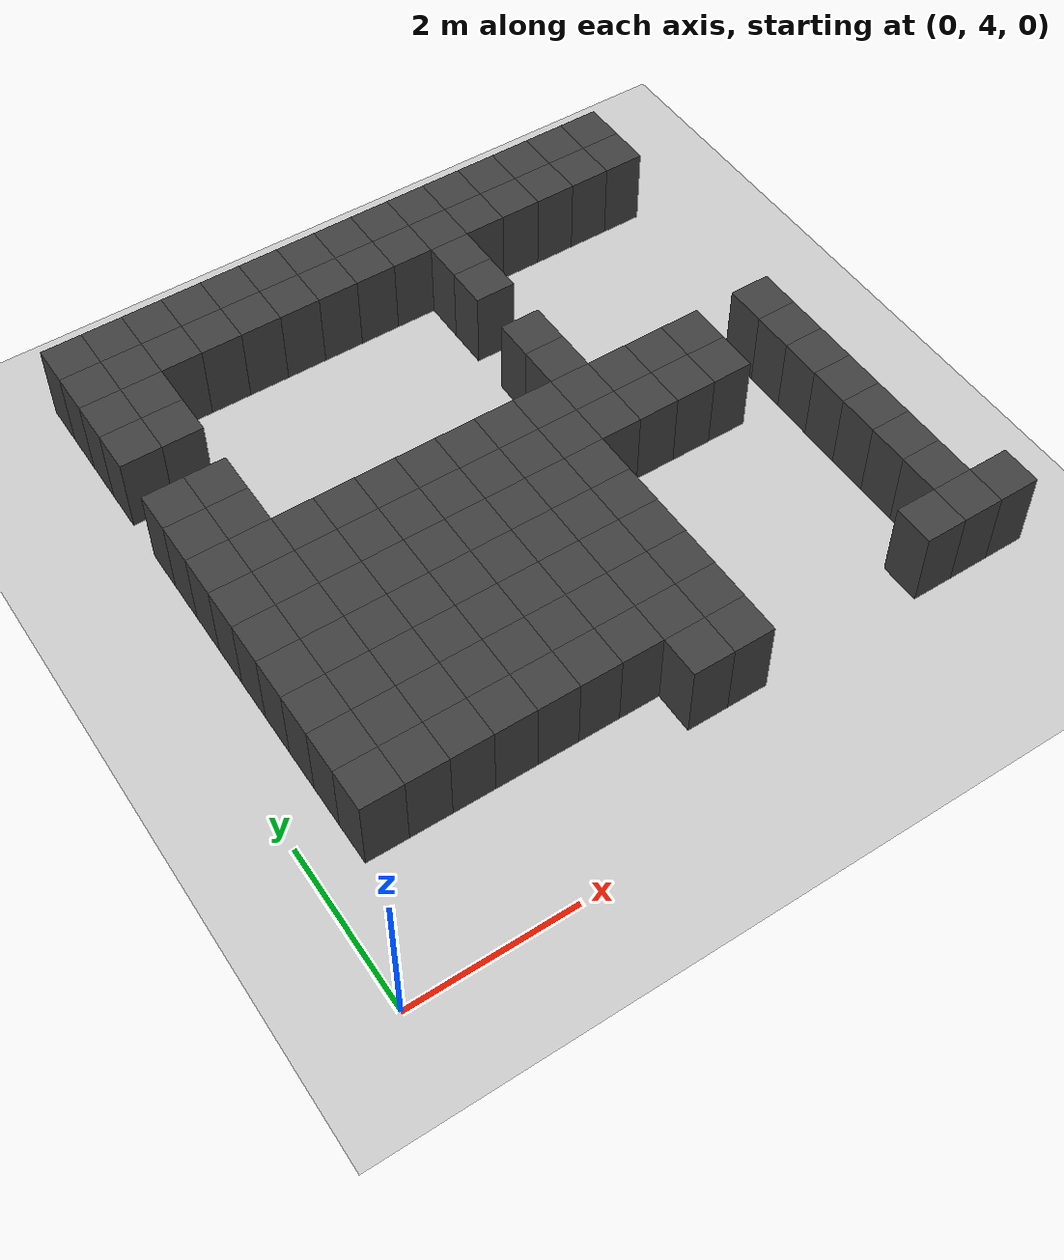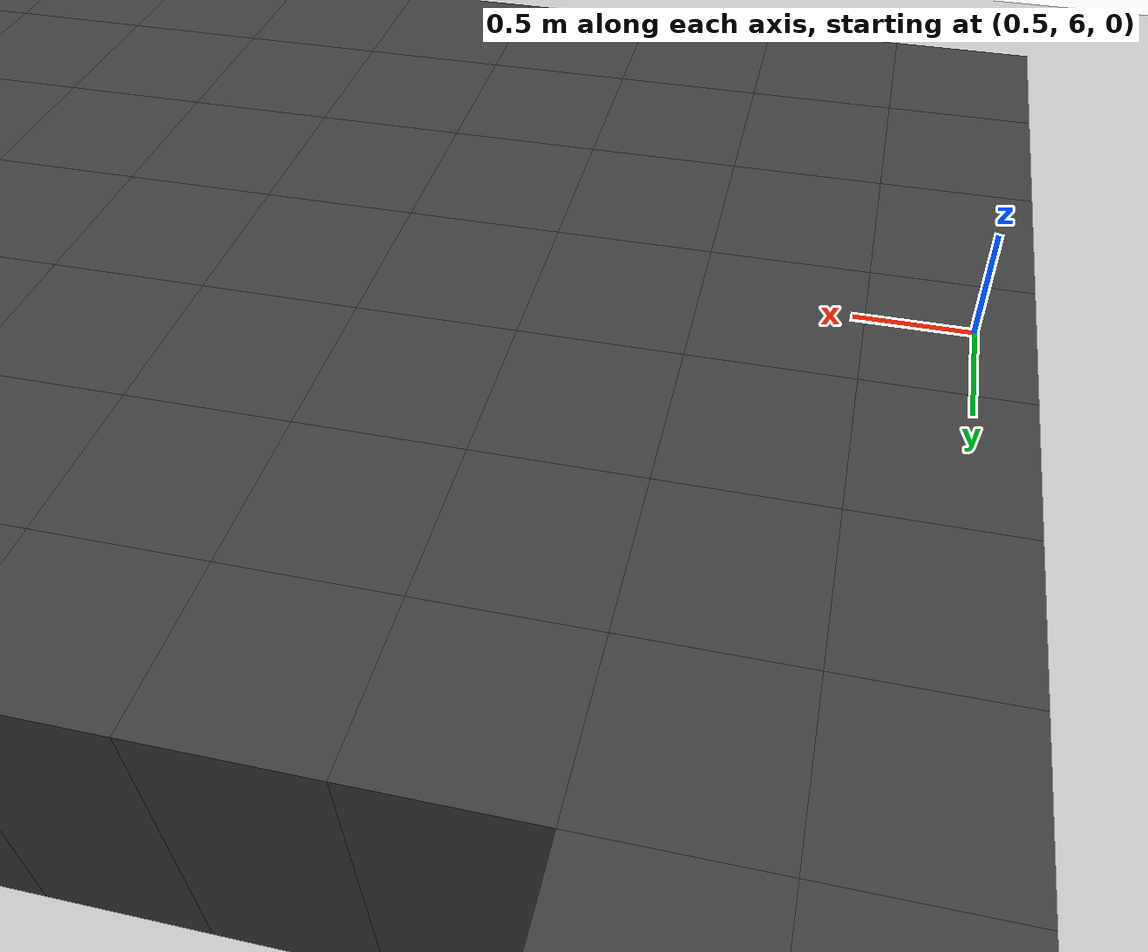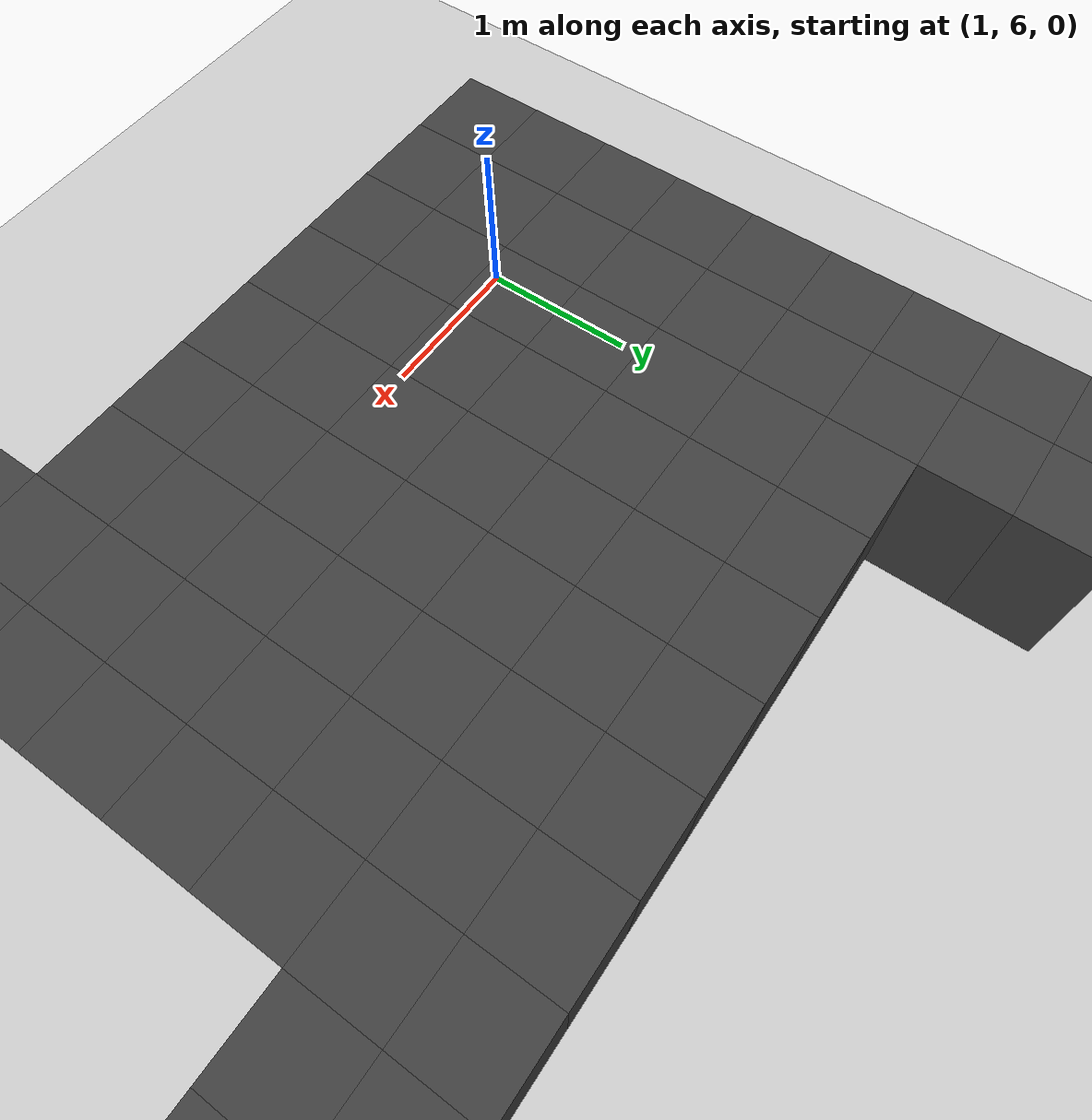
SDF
<sdf version="1.7">
 <world name="map_13820">
  <model name="ground_plane">
   <static>true</static>
   <link name="link">
    <collision name="collision">
     <geometry><plane><normal>0 0 1</normal><size>200 200</size></plane></geometry>
    </collision>
    <visual name="visual">
     <geometry><plane><normal>0 0 1</normal><size>200 200</size></plane></geometry>
     <material><ambient>0.8 0.8 0.8 1</ambient><diffuse>0.8 0.8 0.8 1</diffuse></material>
    </visual>
   </link>
  </model>
  <model name="maze_environment">
   <static>true</static>
   <link name="wall_26">
    <pose>0.750 12.250 0.500 0 0 0</pose>
    <collision name="col"><geometry><box><size>0.5 0.5 1.0</size></box></geometry></collision>
    <visual name="vis">
     <geometry><box><size>0.5 0.5 1.0</size></box></geometry>
     <material><ambient>0.15 0.15 0.15 1</ambient><diffuse>0.25 0.25 0.25 1</diffuse></material>
    </visual>
   </link>
   <link name="wall_27">
    <pose>1.250 12.250 0.500 0 0 0</pose>
    <collision name="col"><geometry><box><size>0.5 0.5 1.0</size></box></geometry></collision>
    <visual name="vis">
     <geometry><box><size>0.5 0.5 1.0</size></box></geometry>
     <material><ambient>0.15 0.15 0.15 1</ambient><diffuse>0.25 0.25 0.25 1</diffuse></material>
    </visual>
   </link>
   <link name="wall_28">
    <pose>1.750 12.250 0.500 0 0 0</pose>
    <collision name="col"><geometry><box><size>0.5 0.5 1.0</size></box></geometry></collision>
    <visual name="vis">
     <geometry><box><size>0.5 0.5 1.0</size></box></geometry>
     <material><ambient>0.15 0.15 0.15 1</ambient><diffuse>0.25 0.25 0.25 1</diffuse></material>
    </visual>
   </link>
   <link name="wall_29">
    <pose>2.250 12.250 0.500 0 0 0</pose>
    <collision name="col"><geometry><box><size>0.5 0.5 1.0</size></box></geometry></collision>
    <visual name="vis">
     <geometry><box><size>0.5 0.5 1.0</size></box></geometry>
     <material><ambient>0.15 0.15 0.15 1</ambient><diffuse>0.25 0.25 0.25 1</diffuse></material>
    </visual>
   </link>
   <link name="wall_30">
    <pose>2.750 12.250 0.500 0 0 0</pose>
    <collision name="col"><geometry><box><size>0.5 0.5 1.0</size></box></geometry></collision>
    <visual name="vis">
     <geometry><box><size>0.5 0.5 1.0</size></box></geometry>
     <material><ambient>0.15 0.15 0.15 1</ambient><diffuse>0.25 0.25 0.25 1</diffuse></material>
    </visual>
   </link>
   <link name="wall_31">
    <pose>3.250 12.250 0.500 0 0 0</pose>
    <collision name="col"><geometry><box><size>0.5 0.5 1.0</size></box></geometry></collision>
    <visual name="vis">
     <geometry><box><size>0.5 0.5 1.0</size></box></geometry>
     <material><ambient>0.15 0.15 0.15 1</ambient><diffuse>0.25 0.25 0.25 1</diffuse></material>
    </visual>
   </link>
   <link name="wall_32">
    <pose>3.750 12.250 0.500 0 0 0</pose>
    <collision name="col"><geometry><box><size>0.5 0.5 1.0</size></box></geometry></collision>
    <visual name="vis">
     <geometry><box><size>0.5 0.5 1.0</size></box></geometry>
     <material><ambient>0.15 0.15 0.15 1</ambient><diffuse>0.25 0.25 0.25 1</diffuse></material>
    </visual>
   </link>
   <link name="wall_33">
    <pose>4.250 12.250 0.500 0 0 0</pose>
    <collision name="col"><geometry><box><size>0.5 0.5 1.0</size></box></geometry></collision>
    <visual name="vis">
     <geometry><box><size>0.5 0.5 1.0</size></box></geometry>
     <material><ambient>0.15 0.15 0.15 1</ambient><diffuse>0.25 0.25 0.25 1</diffuse></material>
    </visual>
   </link>
   <link name="wall_34">
    <pose>4.750 12.250 0.500 0 0 0</pose>
    <collision name="col"><geometry><box><size>0.5 0.5 1.0</size></box></geometry></collision>
    <visual name="vis">
     <geometry><box><size>0.5 0.5 1.0</size></box></geometry>
     <material><ambient>0.15 0.15 0.15 1</ambient><diffuse>0.25 0.25 0.25 1</diffuse></material>
    </visual>
   </link>
   <link name="wall_35">
    <pose>5.250 12.250 0.500 0 0 0</pose>
    <collision name="col"><geometry><box><size>0.5 0.5 1.0</size></box></geometry></collision>
    <visual name="vis">
     <geometry><box><size>0.5 0.5 1.0</size></box></geometry>
     <material><ambient>0.15 0.15 0.15 1</ambient><diffuse>0.25 0.25 0.25 1</diffuse></material>
    </visual>
   </link>
   <link name="wall_36">
    <pose>5.750 12.250 0.500 0 0 0</pose>
    <collision name="col"><geometry><box><size>0.5 0.5 1.0</size></box></geometry></collision>
    <visual name="vis">
     <geometry><box><size>0.5 0.5 1.0</size></box></geometry>
     <material><ambient>0.15 0.15 0.15 1</ambient><diffuse>0.25 0.25 0.25 1</diffuse></material>
    </visual>
   </link>
   <link name="wall_37">
    <pose>6.250 12.250 0.500 0 0 0</pose>
    <collision name="col"><geometry><box><size>0.5 0.5 1.0</size></box></geometry></collision>
    <visual name="vis">
     <geometry><box><size>0.5 0.5 1.0</size></box></geometry>
     <material><ambient>0.15 0.15 0.15 1</ambient><diffuse>0.25 0.25 0.25 1</diffuse></material>
    </visual>
   </link>
   <link name="wall_38">
    <pose>6.750 12.250 0.500 0 0 0</pose>
    <collision name="col"><geometry><box><size>0.5 0.5 1.0</size></box></geometry></collision>
    <visual name="vis">
     <geometry><box><size>0.5 0.5 1.0</size></box></geometry>
     <material><ambient>0.15 0.15 0.15 1</ambient><diffuse>0.25 0.25 0.25 1</diffuse></material>
    </visual>
   </link>
   <link name="wall_39">
    <pose>7.250 12.250 0.500 0 0 0</pose>
    <collision name="col"><geometry><box><size>0.5 0.5 1.0</size></box></geometry></collision>
    <visual name="vis">
     <geometry><box><size>0.5 0.5 1.0</size></box></geometry>
     <material><ambient>0.15 0.15 0.15 1</ambient><diffuse>0.25 0.25 0.25 1</diffuse></material>
    </visual>
   </link>
   <link name="wall_40">
    <pose>7.750 12.250 0.500 0 0 0</pose>
    <collision name="col"><geometry><box><size>0.5 0.5 1.0</size></box></geometry></collision>
    <visual name="vis">
     <geometry><box><size>0.5 0.5 1.0</size></box></geometry>
     <material><ambient>0.15 0.15 0.15 1</ambient><diffuse>0.25 0.25 0.25 1</diffuse></material>
    </visual>
   </link>
   <link name="wall_73">
    <pose>0.750 11.750 0.500 0 0 0</pose>
    <collision name="col"><geometry><box><size>0.5 0.5 1.0</size></box></geometry></collision>
    <visual name="vis">
     <geometry><box><size>0.5 0.5 1.0</size></box></geometry>
     <material><ambient>0.15 0.15 0.15 1</ambient><diffuse>0.25 0.25 0.25 1</diffuse></material>
    </visual>
   </link>
   <link name="wall_74">
    <pose>1.250 11.750 0.500 0 0 0</pose>
    <collision name="col"><geometry><box><size>0.5 0.5 1.0</size></box></geometry></collision>
    <visual name="vis">
     <geometry><box><size>0.5 0.5 1.0</size></box></geometry>
     <material><ambient>0.15 0.15 0.15 1</ambient><diffuse>0.25 0.25 0.25 1</diffuse></material>
    </visual>
   </link>
   <link name="wall_75">
    <pose>1.750 11.750 0.500 0 0 0</pose>
    <collision name="col"><geometry><box><size>0.5 0.5 1.0</size></box></geometry></collision>
    <visual name="vis">
     <geometry><box><size>0.5 0.5 1.0</size></box></geometry>
     <material><ambient>0.15 0.15 0.15 1</ambient><diffuse>0.25 0.25 0.25 1</diffuse></material>
    </visual>
   </link>
   <link name="wall_76">
    <pose>2.250 11.750 0.500 0 0 0</pose>
    <collision name="col"><geometry><box><size>0.5 0.5 1.0</size></box></geometry></collision>
    <visual name="vis">
     <geometry><box><size>0.5 0.5 1.0</size></box></geometry>
     <material><ambient>0.15 0.15 0.15 1</ambient><diffuse>0.25 0.25 0.25 1</diffuse></material>
    </visual>
   </link>
   <link name="wall_77">
    <pose>2.750 11.750 0.500 0 0 0</pose>
    <collision name="col"><geometry><box><size>0.5 0.5 1.0</size></box></geometry></collision>
    <visual name="vis">
     <geometry><box><size>0.5 0.5 1.0</size></box></geometry>
     <material><ambient>0.15 0.15 0.15 1</ambient><diffuse>0.25 0.25 0.25 1</diffuse></material>
    </visual>
   </link>
   <link name="wall_78">
    <pose>3.250 11.750 0.500 0 0 0</pose>
    <collision name="col"><geometry><box><size>0.5 0.5 1.0</size></box></geometry></collision>
    <visual name="vis">
     <geometry><box><size>0.5 0.5 1.0</size></box></geometry>
     <material><ambient>0.15 0.15 0.15 1</ambient><diffuse>0.25 0.25 0.25 1</diffuse></material>
    </visual>
   </link>
   <link name="wall_79">
    <pose>3.750 11.750 0.500 0 0 0</pose>
    <collision name="col"><geometry><box><size>0.5 0.5 1.0</size></box></geometry></collision>
    <visual name="vis">
     <geometry><box><size>0.5 0.5 1.0</size></box></geometry>
     <material><ambient>0.15 0.15 0.15 1</ambient><diffuse>0.25 0.25 0.25 1</diffuse></material>
    </visual>
   </link>
   <link name="wall_80">
    <pose>4.250 11.750 0.500 0 0 0</pose>
    <collision name="col"><geometry><box><size>0.5 0.5 1.0</size></box></geometry></collision>
    <visual name="vis">
     <geometry><box><size>0.5 0.5 1.0</size></box></geometry>
     <material><ambient>0.15 0.15 0.15 1</ambient><diffuse>0.25 0.25 0.25 1</diffuse></material>
    </visual>
   </link>
   <link name="wall_81">
    <pose>4.750 11.750 0.500 0 0 0</pose>
    <collision name="col"><geometry><box><size>0.5 0.5 1.0</size></box></geometry></collision>
    <visual name="vis">
     <geometry><box><size>0.5 0.5 1.0</size></box></geometry>
     <material><ambient>0.15 0.15 0.15 1</ambient><diffuse>0.25 0.25 0.25 1</diffuse></material>
    </visual>
   </link>
   <link name="wall_82">
    <pose>5.250 11.750 0.500 0 0 0</pose>
    <collision name="col"><geometry><box><size>0.5 0.5 1.0</size></box></geometry></collision>
    <visual name="vis">
     <geometry><box><size>0.5 0.5 1.0</size></box></geometry>
     <material><ambient>0.15 0.15 0.15 1</ambient><diffuse>0.25 0.25 0.25 1</diffuse></material>
    </visual>
   </link>
   <link name="wall_83">
    <pose>5.750 11.750 0.500 0 0 0</pose>
    <collision name="col"><geometry><box><size>0.5 0.5 1.0</size></box></geometry></collision>
    <visual name="vis">
     <geometry><box><size>0.5 0.5 1.0</size></box></geometry>
     <material><ambient>0.15 0.15 0.15 1</ambient><diffuse>0.25 0.25 0.25 1</diffuse></material>
    </visual>
   </link>
   <link name="wall_84">
    <pose>6.250 11.750 0.500 0 0 0</pose>
    <collision name="col"><geometry><box><size>0.5 0.5 1.0</size></box></geometry></collision>
    <visual name="vis">
     <geometry><box><size>0.5 0.5 1.0</size></box></geometry>
     <material><ambient>0.15 0.15 0.15 1</ambient><diffuse>0.25 0.25 0.25 1</diffuse></material>
    </visual>
   </link>
   <link name="wall_85">
    <pose>6.750 11.750 0.500 0 0 0</pose>
    <collision name="col"><geometry><box><size>0.5 0.5 1.0</size></box></geometry></collision>
    <visual name="vis">
     <geometry><box><size>0.5 0.5 1.0</size></box></geometry>
     <material><ambient>0.15 0.15 0.15 1</ambient><diffuse>0.25 0.25 0.25 1</diffuse></material>
    </visual>
   </link>
   <link name="wall_86">
    <pose>7.250 11.750 0.500 0 0 0</pose>
    <collision name="col"><geometry><box><size>0.5 0.5 1.0</size></box></geometry></collision>
    <visual name="vis">
     <geometry><box><size>0.5 0.5 1.0</size></box></geometry>
     <material><ambient>0.15 0.15 0.15 1</ambient><diffuse>0.25 0.25 0.25 1</diffuse></material>
    </visual>
   </link>
   <link name="wall_87">
    <pose>7.750 11.750 0.500 0 0 0</pose>
    <collision name="col"><geometry><box><size>0.5 0.5 1.0</size></box></geometry></collision>
    <visual name="vis">
     <geometry><box><size>0.5 0.5 1.0</size></box></geometry>
     <material><ambient>0.15 0.15 0.15 1</ambient><diffuse>0.25 0.25 0.25 1</diffuse></material>
    </visual>
   </link>
   <link name="wall_114">
    <pose>0.750 11.250 0.500 0 0 0</pose>
    <collision name="col"><geometry><box><size>0.5 0.5 1.0</size></box></geometry></collision>
    <visual name="vis">
     <geometry><box><size>0.5 0.5 1.0</size></box></geometry>
     <material><ambient>0.15 0.15 0.15 1</ambient><diffuse>0.25 0.25 0.25 1</diffuse></material>
    </visual>
   </link>
   <link name="wall_115">
    <pose>1.250 11.250 0.500 0 0 0</pose>
    <collision name="col"><geometry><box><size>0.5 0.5 1.0</size></box></geometry></collision>
    <visual name="vis">
     <geometry><box><size>0.5 0.5 1.0</size></box></geometry>
     <material><ambient>0.15 0.15 0.15 1</ambient><diffuse>0.25 0.25 0.25 1</diffuse></material>
    </visual>
   </link>
   <link name="wall_116">
    <pose>5.250 11.250 0.500 0 0 0</pose>
    <collision name="col"><geometry><box><size>0.5 0.5 1.0</size></box></geometry></collision>
    <visual name="vis">
     <geometry><box><size>0.5 0.5 1.0</size></box></geometry>
     <material><ambient>0.15 0.15 0.15 1</ambient><diffuse>0.25 0.25 0.25 1</diffuse></material>
    </visual>
   </link>
   <link name="wall_141">
    <pose>0.750 10.750 0.500 0 0 0</pose>
    <collision name="col"><geometry><box><size>0.5 0.5 1.0</size></box></geometry></collision>
    <visual name="vis">
     <geometry><box><size>0.5 0.5 1.0</size></box></geometry>
     <material><ambient>0.15 0.15 0.15 1</ambient><diffuse>0.25 0.25 0.25 1</diffuse></material>
    </visual>
   </link>
   <link name="wall_142">
    <pose>1.250 10.750 0.500 0 0 0</pose>
    <collision name="col"><geometry><box><size>0.5 0.5 1.0</size></box></geometry></collision>
    <visual name="vis">
     <geometry><box><size>0.5 0.5 1.0</size></box></geometry>
     <material><ambient>0.15 0.15 0.15 1</ambient><diffuse>0.25 0.25 0.25 1</diffuse></material>
    </visual>
   </link>
   <link name="wall_143">
    <pose>5.250 10.750 0.500 0 0 0</pose>
    <collision name="col"><geometry><box><size>0.5 0.5 1.0</size></box></geometry></collision>
    <visual name="vis">
     <geometry><box><size>0.5 0.5 1.0</size></box></geometry>
     <material><ambient>0.15 0.15 0.15 1</ambient><diffuse>0.25 0.25 0.25 1</diffuse></material>
    </visual>
   </link>
   <link name="wall_182">
    <pose>0.750 9.750 0.500 0 0 0</pose>
    <collision name="col"><geometry><box><size>0.5 0.5 1.0</size></box></geometry></collision>
    <visual name="vis">
     <geometry><box><size>0.5 0.5 1.0</size></box></geometry>
     <material><ambient>0.15 0.15 0.15 1</ambient><diffuse>0.25 0.25 0.25 1</diffuse></material>
    </visual>
   </link>
   <link name="wall_183">
    <pose>1.250 9.750 0.500 0 0 0</pose>
    <collision name="col"><geometry><box><size>0.5 0.5 1.0</size></box></geometry></collision>
    <visual name="vis">
     <geometry><box><size>0.5 0.5 1.0</size></box></geometry>
     <material><ambient>0.15 0.15 0.15 1</ambient><diffuse>0.25 0.25 0.25 1</diffuse></material>
    </visual>
   </link>
   <link name="wall_184">
    <pose>5.250 9.750 0.500 0 0 0</pose>
    <collision name="col"><geometry><box><size>0.5 0.5 1.0</size></box></geometry></collision>
    <visual name="vis">
     <geometry><box><size>0.5 0.5 1.0</size></box></geometry>
     <material><ambient>0.15 0.15 0.15 1</ambient><diffuse>0.25 0.25 0.25 1</diffuse></material>
    </visual>
   </link>
   <link name="wall_205">
    <pose>0.750 9.250 0.500 0 0 0</pose>
    <collision name="col"><geometry><box><size>0.5 0.5 1.0</size></box></geometry></collision>
    <visual name="vis">
     <geometry><box><size>0.5 0.5 1.0</size></box></geometry>
     <material><ambient>0.15 0.15 0.15 1</ambient><diffuse>0.25 0.25 0.25 1</diffuse></material>
    </visual>
   </link>
   <link name="wall_206">
    <pose>1.250 9.250 0.500 0 0 0</pose>
    <collision name="col"><geometry><box><size>0.5 0.5 1.0</size></box></geometry></collision>
    <visual name="vis">
     <geometry><box><size>0.5 0.5 1.0</size></box></geometry>
     <material><ambient>0.15 0.15 0.15 1</ambient><diffuse>0.25 0.25 0.25 1</diffuse></material>
    </visual>
   </link>
   <link name="wall_207">
    <pose>5.250 9.250 0.500 0 0 0</pose>
    <collision name="col"><geometry><box><size>0.5 0.5 1.0</size></box></geometry></collision>
    <visual name="vis">
     <geometry><box><size>0.5 0.5 1.0</size></box></geometry>
     <material><ambient>0.15 0.15 0.15 1</ambient><diffuse>0.25 0.25 0.25 1</diffuse></material>
    </visual>
   </link>
   <link name="wall_221">
    <pose>0.750 8.750 0.500 0 0 0</pose>
    <collision name="col"><geometry><box><size>0.5 0.5 1.0</size></box></geometry></collision>
    <visual name="vis">
     <geometry><box><size>0.5 0.5 1.0</size></box></geometry>
     <material><ambient>0.15 0.15 0.15 1</ambient><diffuse>0.25 0.25 0.25 1</diffuse></material>
    </visual>
   </link>
   <link name="wall_222">
    <pose>1.250 8.750 0.500 0 0 0</pose>
    <collision name="col"><geometry><box><size>0.5 0.5 1.0</size></box></geometry></collision>
    <visual name="vis">
     <geometry><box><size>0.5 0.5 1.0</size></box></geometry>
     <material><ambient>0.15 0.15 0.15 1</ambient><diffuse>0.25 0.25 0.25 1</diffuse></material>
    </visual>
   </link>
   <link name="wall_223">
    <pose>1.750 8.750 0.500 0 0 0</pose>
    <collision name="col"><geometry><box><size>0.5 0.5 1.0</size></box></geometry></collision>
    <visual name="vis">
     <geometry><box><size>0.5 0.5 1.0</size></box></geometry>
     <material><ambient>0.15 0.15 0.15 1</ambient><diffuse>0.25 0.25 0.25 1</diffuse></material>
    </visual>
   </link>
   <link name="wall_224">
    <pose>2.250 8.750 0.500 0 0 0</pose>
    <collision name="col"><geometry><box><size>0.5 0.5 1.0</size></box></geometry></collision>
    <visual name="vis">
     <geometry><box><size>0.5 0.5 1.0</size></box></geometry>
     <material><ambient>0.15 0.15 0.15 1</ambient><diffuse>0.25 0.25 0.25 1</diffuse></material>
    </visual>
   </link>
   <link name="wall_225">
    <pose>2.750 8.750 0.500 0 0 0</pose>
    <collision name="col"><geometry><box><size>0.5 0.5 1.0</size></box></geometry></collision>
    <visual name="vis">
     <geometry><box><size>0.5 0.5 1.0</size></box></geometry>
     <material><ambient>0.15 0.15 0.15 1</ambient><diffuse>0.25 0.25 0.25 1</diffuse></material>
    </visual>
   </link>
   <link name="wall_226">
    <pose>3.250 8.750 0.500 0 0 0</pose>
    <collision name="col"><geometry><box><size>0.5 0.5 1.0</size></box></geometry></collision>
    <visual name="vis">
     <geometry><box><size>0.5 0.5 1.0</size></box></geometry>
     <material><ambient>0.15 0.15 0.15 1</ambient><diffuse>0.25 0.25 0.25 1</diffuse></material>
    </visual>
   </link>
   <link name="wall_227">
    <pose>3.750 8.750 0.500 0 0 0</pose>
    <collision name="col"><geometry><box><size>0.5 0.5 1.0</size></box></geometry></collision>
    <visual name="vis">
     <geometry><box><size>0.5 0.5 1.0</size></box></geometry>
     <material><ambient>0.15 0.15 0.15 1</ambient><diffuse>0.25 0.25 0.25 1</diffuse></material>
    </visual>
   </link>
   <link name="wall_228">
    <pose>4.250 8.750 0.500 0 0 0</pose>
    <collision name="col"><geometry><box><size>0.5 0.5 1.0</size></box></geometry></collision>
    <visual name="vis">
     <geometry><box><size>0.5 0.5 1.0</size></box></geometry>
     <material><ambient>0.15 0.15 0.15 1</ambient><diffuse>0.25 0.25 0.25 1</diffuse></material>
    </visual>
   </link>
   <link name="wall_229">
    <pose>4.750 8.750 0.500 0 0 0</pose>
    <collision name="col"><geometry><box><size>0.5 0.5 1.0</size></box></geometry></collision>
    <visual name="vis">
     <geometry><box><size>0.5 0.5 1.0</size></box></geometry>
     <material><ambient>0.15 0.15 0.15 1</ambient><diffuse>0.25 0.25 0.25 1</diffuse></material>
    </visual>
   </link>
   <link name="wall_230">
    <pose>5.250 8.750 0.500 0 0 0</pose>
    <collision name="col"><geometry><box><size>0.5 0.5 1.0</size></box></geometry></collision>
    <visual name="vis">
     <geometry><box><size>0.5 0.5 1.0</size></box></geometry>
     <material><ambient>0.15 0.15 0.15 1</ambient><diffuse>0.25 0.25 0.25 1</diffuse></material>
    </visual>
   </link>
   <link name="wall_231">
    <pose>5.750 8.750 0.500 0 0 0</pose>
    <collision name="col"><geometry><box><size>0.5 0.5 1.0</size></box></geometry></collision>
    <visual name="vis">
     <geometry><box><size>0.5 0.5 1.0</size></box></geometry>
     <material><ambient>0.15 0.15 0.15 1</ambient><diffuse>0.25 0.25 0.25 1</diffuse></material>
    </visual>
   </link>
   <link name="wall_232">
    <pose>6.250 8.750 0.500 0 0 0</pose>
    <collision name="col"><geometry><box><size>0.5 0.5 1.0</size></box></geometry></collision>
    <visual name="vis">
     <geometry><box><size>0.5 0.5 1.0</size></box></geometry>
     <material><ambient>0.15 0.15 0.15 1</ambient><diffuse>0.25 0.25 0.25 1</diffuse></material>
    </visual>
   </link>
   <link name="wall_233">
    <pose>6.750 8.750 0.500 0 0 0</pose>
    <collision name="col"><geometry><box><size>0.5 0.5 1.0</size></box></geometry></collision>
    <visual name="vis">
     <geometry><box><size>0.5 0.5 1.0</size></box></geometry>
     <material><ambient>0.15 0.15 0.15 1</ambient><diffuse>0.25 0.25 0.25 1</diffuse></material>
    </visual>
   </link>
   <link name="wall_234">
    <pose>7.750 8.750 0.500 0 0 0</pose>
    <collision name="col"><geometry><box><size>0.5 0.5 1.0</size></box></geometry></collision>
    <visual name="vis">
     <geometry><box><size>0.5 0.5 1.0</size></box></geometry>
     <material><ambient>0.15 0.15 0.15 1</ambient><diffuse>0.25 0.25 0.25 1</diffuse></material>
    </visual>
   </link>
   <link name="wall_257">
    <pose>0.750 8.250 0.500 0 0 0</pose>
    <collision name="col"><geometry><box><size>0.5 0.5 1.0</size></box></geometry></collision>
    <visual name="vis">
     <geometry><box><size>0.5 0.5 1.0</size></box></geometry>
     <material><ambient>0.15 0.15 0.15 1</ambient><diffuse>0.25 0.25 0.25 1</diffuse></material>
    </visual>
   </link>
   <link name="wall_258">
    <pose>1.250 8.250 0.500 0 0 0</pose>
    <collision name="col"><geometry><box><size>0.5 0.5 1.0</size></box></geometry></collision>
    <visual name="vis">
     <geometry><box><size>0.5 0.5 1.0</size></box></geometry>
     <material><ambient>0.15 0.15 0.15 1</ambient><diffuse>0.25 0.25 0.25 1</diffuse></material>
    </visual>
   </link>
   <link name="wall_259">
    <pose>1.750 8.250 0.500 0 0 0</pose>
    <collision name="col"><geometry><box><size>0.5 0.5 1.0</size></box></geometry></collision>
    <visual name="vis">
     <geometry><box><size>0.5 0.5 1.0</size></box></geometry>
     <material><ambient>0.15 0.15 0.15 1</ambient><diffuse>0.25 0.25 0.25 1</diffuse></material>
    </visual>
   </link>
   <link name="wall_260">
    <pose>2.250 8.250 0.500 0 0 0</pose>
    <collision name="col"><geometry><box><size>0.5 0.5 1.0</size></box></geometry></collision>
    <visual name="vis">
     <geometry><box><size>0.5 0.5 1.0</size></box></geometry>
     <material><ambient>0.15 0.15 0.15 1</ambient><diffuse>0.25 0.25 0.25 1</diffuse></material>
    </visual>
   </link>
   <link name="wall_261">
    <pose>2.750 8.250 0.500 0 0 0</pose>
    <collision name="col"><geometry><box><size>0.5 0.5 1.0</size></box></geometry></collision>
    <visual name="vis">
     <geometry><box><size>0.5 0.5 1.0</size></box></geometry>
     <material><ambient>0.15 0.15 0.15 1</ambient><diffuse>0.25 0.25 0.25 1</diffuse></material>
    </visual>
   </link>
   <link name="wall_262">
    <pose>3.250 8.250 0.500 0 0 0</pose>
    <collision name="col"><geometry><box><size>0.5 0.5 1.0</size></box></geometry></collision>
    <visual name="vis">
     <geometry><box><size>0.5 0.5 1.0</size></box></geometry>
     <material><ambient>0.15 0.15 0.15 1</ambient><diffuse>0.25 0.25 0.25 1</diffuse></material>
    </visual>
   </link>
   <link name="wall_263">
    <pose>3.750 8.250 0.500 0 0 0</pose>
    <collision name="col"><geometry><box><size>0.5 0.5 1.0</size></box></geometry></collision>
    <visual name="vis">
     <geometry><box><size>0.5 0.5 1.0</size></box></geometry>
     <material><ambient>0.15 0.15 0.15 1</ambient><diffuse>0.25 0.25 0.25 1</diffuse></material>
    </visual>
   </link>
   <link name="wall_264">
    <pose>4.250 8.250 0.500 0 0 0</pose>
    <collision name="col"><geometry><box><size>0.5 0.5 1.0</size></box></geometry></collision>
    <visual name="vis">
     <geometry><box><size>0.5 0.5 1.0</size></box></geometry>
     <material><ambient>0.15 0.15 0.15 1</ambient><diffuse>0.25 0.25 0.25 1</diffuse></material>
    </visual>
   </link>
   <link name="wall_265">
    <pose>4.750 8.250 0.500 0 0 0</pose>
    <collision name="col"><geometry><box><size>0.5 0.5 1.0</size></box></geometry></collision>
    <visual name="vis">
     <geometry><box><size>0.5 0.5 1.0</size></box></geometry>
     <material><ambient>0.15 0.15 0.15 1</ambient><diffuse>0.25 0.25 0.25 1</diffuse></material>
    </visual>
   </link>
   <link name="wall_266">
    <pose>5.250 8.250 0.500 0 0 0</pose>
    <collision name="col"><geometry><box><size>0.5 0.5 1.0</size></box></geometry></collision>
    <visual name="vis">
     <geometry><box><size>0.5 0.5 1.0</size></box></geometry>
     <material><ambient>0.15 0.15 0.15 1</ambient><diffuse>0.25 0.25 0.25 1</diffuse></material>
    </visual>
   </link>
   <link name="wall_267">
    <pose>5.750 8.250 0.500 0 0 0</pose>
    <collision name="col"><geometry><box><size>0.5 0.5 1.0</size></box></geometry></collision>
    <visual name="vis">
     <geometry><box><size>0.5 0.5 1.0</size></box></geometry>
     <material><ambient>0.15 0.15 0.15 1</ambient><diffuse>0.25 0.25 0.25 1</diffuse></material>
    </visual>
   </link>
   <link name="wall_268">
    <pose>6.250 8.250 0.500 0 0 0</pose>
    <collision name="col"><geometry><box><size>0.5 0.5 1.0</size></box></geometry></collision>
    <visual name="vis">
     <geometry><box><size>0.5 0.5 1.0</size></box></geometry>
     <material><ambient>0.15 0.15 0.15 1</ambient><diffuse>0.25 0.25 0.25 1</diffuse></material>
    </visual>
   </link>
   <link name="wall_269">
    <pose>6.750 8.250 0.500 0 0 0</pose>
    <collision name="col"><geometry><box><size>0.5 0.5 1.0</size></box></geometry></collision>
    <visual name="vis">
     <geometry><box><size>0.5 0.5 1.0</size></box></geometry>
     <material><ambient>0.15 0.15 0.15 1</ambient><diffuse>0.25 0.25 0.25 1</diffuse></material>
    </visual>
   </link>
   <link name="wall_270">
    <pose>7.750 8.250 0.500 0 0 0</pose>
    <collision name="col"><geometry><box><size>0.5 0.5 1.0</size></box></geometry></collision>
    <visual name="vis">
     <geometry><box><size>0.5 0.5 1.0</size></box></geometry>
     <material><ambient>0.15 0.15 0.15 1</ambient><diffuse>0.25 0.25 0.25 1</diffuse></material>
    </visual>
   </link>
   <link name="wall_300">
    <pose>0.750 7.750 0.500 0 0 0</pose>
    <collision name="col"><geometry><box><size>0.5 0.5 1.0</size></box></geometry></collision>
    <visual name="vis">
     <geometry><box><size>0.5 0.5 1.0</size></box></geometry>
     <material><ambient>0.15 0.15 0.15 1</ambient><diffuse>0.25 0.25 0.25 1</diffuse></material>
    </visual>
   </link>
   <link name="wall_301">
    <pose>1.250 7.750 0.500 0 0 0</pose>
    <collision name="col"><geometry><box><size>0.5 0.5 1.0</size></box></geometry></collision>
    <visual name="vis">
     <geometry><box><size>0.5 0.5 1.0</size></box></geometry>
     <material><ambient>0.15 0.15 0.15 1</ambient><diffuse>0.25 0.25 0.25 1</diffuse></material>
    </visual>
   </link>
   <link name="wall_302">
    <pose>1.750 7.750 0.500 0 0 0</pose>
    <collision name="col"><geometry><box><size>0.5 0.5 1.0</size></box></geometry></collision>
    <visual name="vis">
     <geometry><box><size>0.5 0.5 1.0</size></box></geometry>
     <material><ambient>0.15 0.15 0.15 1</ambient><diffuse>0.25 0.25 0.25 1</diffuse></material>
    </visual>
   </link>
   <link name="wall_303">
    <pose>2.250 7.750 0.500 0 0 0</pose>
    <collision name="col"><geometry><box><size>0.5 0.5 1.0</size></box></geometry></collision>
    <visual name="vis">
     <geometry><box><size>0.5 0.5 1.0</size></box></geometry>
     <material><ambient>0.15 0.15 0.15 1</ambient><diffuse>0.25 0.25 0.25 1</diffuse></material>
    </visual>
   </link>
   <link name="wall_304">
    <pose>2.750 7.750 0.500 0 0 0</pose>
    <collision name="col"><geometry><box><size>0.5 0.5 1.0</size></box></geometry></collision>
    <visual name="vis">
     <geometry><box><size>0.5 0.5 1.0</size></box></geometry>
     <material><ambient>0.15 0.15 0.15 1</ambient><diffuse>0.25 0.25 0.25 1</diffuse></material>
    </visual>
   </link>
   <link name="wall_305">
    <pose>3.250 7.750 0.500 0 0 0</pose>
    <collision name="col"><geometry><box><size>0.5 0.5 1.0</size></box></geometry></collision>
    <visual name="vis">
     <geometry><box><size>0.5 0.5 1.0</size></box></geometry>
     <material><ambient>0.15 0.15 0.15 1</ambient><diffuse>0.25 0.25 0.25 1</diffuse></material>
    </visual>
   </link>
   <link name="wall_306">
    <pose>3.750 7.750 0.500 0 0 0</pose>
    <collision name="col"><geometry><box><size>0.5 0.5 1.0</size></box></geometry></collision>
    <visual name="vis">
     <geometry><box><size>0.5 0.5 1.0</size></box></geometry>
     <material><ambient>0.15 0.15 0.15 1</ambient><diffuse>0.25 0.25 0.25 1</diffuse></material>
    </visual>
   </link>
   <link name="wall_307">
    <pose>4.250 7.750 0.500 0 0 0</pose>
    <collision name="col"><geometry><box><size>0.5 0.5 1.0</size></box></geometry></collision>
    <visual name="vis">
     <geometry><box><size>0.5 0.5 1.0</size></box></geometry>
     <material><ambient>0.15 0.15 0.15 1</ambient><diffuse>0.25 0.25 0.25 1</diffuse></material>
    </visual>
   </link>
   <link name="wall_308">
    <pose>4.750 7.750 0.500 0 0 0</pose>
    <collision name="col"><geometry><box><size>0.5 0.5 1.0</size></box></geometry></collision>
    <visual name="vis">
     <geometry><box><size>0.5 0.5 1.0</size></box></geometry>
     <material><ambient>0.15 0.15 0.15 1</ambient><diffuse>0.25 0.25 0.25 1</diffuse></material>
    </visual>
   </link>
   <link name="wall_309">
    <pose>7.750 7.750 0.500 0 0 0</pose>
    <collision name="col"><geometry><box><size>0.5 0.5 1.0</size></box></geometry></collision>
    <visual name="vis">
     <geometry><box><size>0.5 0.5 1.0</size></box></geometry>
     <material><ambient>0.15 0.15 0.15 1</ambient><diffuse>0.25 0.25 0.25 1</diffuse></material>
    </visual>
   </link>
   <link name="wall_335">
    <pose>0.750 7.250 0.500 0 0 0</pose>
    <collision name="col"><geometry><box><size>0.5 0.5 1.0</size></box></geometry></collision>
    <visual name="vis">
     <geometry><box><size>0.5 0.5 1.0</size></box></geometry>
     <material><ambient>0.15 0.15 0.15 1</ambient><diffuse>0.25 0.25 0.25 1</diffuse></material>
    </visual>
   </link>
   <link name="wall_336">
    <pose>1.250 7.250 0.500 0 0 0</pose>
    <collision name="col"><geometry><box><size>0.5 0.5 1.0</size></box></geometry></collision>
    <visual name="vis">
     <geometry><box><size>0.5 0.5 1.0</size></box></geometry>
     <material><ambient>0.15 0.15 0.15 1</ambient><diffuse>0.25 0.25 0.25 1</diffuse></material>
    </visual>
   </link>
   <link name="wall_337">
    <pose>1.750 7.250 0.500 0 0 0</pose>
    <collision name="col"><geometry><box><size>0.5 0.5 1.0</size></box></geometry></collision>
    <visual name="vis">
     <geometry><box><size>0.5 0.5 1.0</size></box></geometry>
     <material><ambient>0.15 0.15 0.15 1</ambient><diffuse>0.25 0.25 0.25 1</diffuse></material>
    </visual>
   </link>
   <link name="wall_338">
    <pose>2.250 7.250 0.500 0 0 0</pose>
    <collision name="col"><geometry><box><size>0.5 0.5 1.0</size></box></geometry></collision>
    <visual name="vis">
     <geometry><box><size>0.5 0.5 1.0</size></box></geometry>
     <material><ambient>0.15 0.15 0.15 1</ambient><diffuse>0.25 0.25 0.25 1</diffuse></material>
    </visual>
   </link>
   <link name="wall_339">
    <pose>2.750 7.250 0.500 0 0 0</pose>
    <collision name="col"><geometry><box><size>0.5 0.5 1.0</size></box></geometry></collision>
    <visual name="vis">
     <geometry><box><size>0.5 0.5 1.0</size></box></geometry>
     <material><ambient>0.15 0.15 0.15 1</ambient><diffuse>0.25 0.25 0.25 1</diffuse></material>
    </visual>
   </link>
   <link name="wall_340">
    <pose>3.250 7.250 0.500 0 0 0</pose>
    <collision name="col"><geometry><box><size>0.5 0.5 1.0</size></box></geometry></collision>
    <visual name="vis">
     <geometry><box><size>0.5 0.5 1.0</size></box></geometry>
     <material><ambient>0.15 0.15 0.15 1</ambient><diffuse>0.25 0.25 0.25 1</diffuse></material>
    </visual>
   </link>
   <link name="wall_341">
    <pose>3.750 7.250 0.500 0 0 0</pose>
    <collision name="col"><geometry><box><size>0.5 0.5 1.0</size></box></geometry></collision>
    <visual name="vis">
     <geometry><box><size>0.5 0.5 1.0</size></box></geometry>
     <material><ambient>0.15 0.15 0.15 1</ambient><diffuse>0.25 0.25 0.25 1</diffuse></material>
    </visual>
   </link>
   <link name="wall_342">
    <pose>4.250 7.250 0.500 0 0 0</pose>
    <collision name="col"><geometry><box><size>0.5 0.5 1.0</size></box></geometry></collision>
    <visual name="vis">
     <geometry><box><size>0.5 0.5 1.0</size></box></geometry>
     <material><ambient>0.15 0.15 0.15 1</ambient><diffuse>0.25 0.25 0.25 1</diffuse></material>
    </visual>
   </link>
   <link name="wall_343">
    <pose>4.750 7.250 0.500 0 0 0</pose>
    <collision name="col"><geometry><box><size>0.5 0.5 1.0</size></box></geometry></collision>
    <visual name="vis">
     <geometry><box><size>0.5 0.5 1.0</size></box></geometry>
     <material><ambient>0.15 0.15 0.15 1</ambient><diffuse>0.25 0.25 0.25 1</diffuse></material>
    </visual>
   </link>
   <link name="wall_344">
    <pose>7.750 7.250 0.500 0 0 0</pose>
    <collision name="col"><geometry><box><size>0.5 0.5 1.0</size></box></geometry></collision>
    <visual name="vis">
     <geometry><box><size>0.5 0.5 1.0</size></box></geometry>
     <material><ambient>0.15 0.15 0.15 1</ambient><diffuse>0.25 0.25 0.25 1</diffuse></material>
    </visual>
   </link>
   <link name="wall_367">
    <pose>0.750 6.750 0.500 0 0 0</pose>
    <collision name="col"><geometry><box><size>0.5 0.5 1.0</size></box></geometry></collision>
    <visual name="vis">
     <geometry><box><size>0.5 0.5 1.0</size></box></geometry>
     <material><ambient>0.15 0.15 0.15 1</ambient><diffuse>0.25 0.25 0.25 1</diffuse></material>
    </visual>
   </link>
   <link name="wall_368">
    <pose>1.250 6.750 0.500 0 0 0</pose>
    <collision name="col"><geometry><box><size>0.5 0.5 1.0</size></box></geometry></collision>
    <visual name="vis">
     <geometry><box><size>0.5 0.5 1.0</size></box></geometry>
     <material><ambient>0.15 0.15 0.15 1</ambient><diffuse>0.25 0.25 0.25 1</diffuse></material>
    </visual>
   </link>
   <link name="wall_369">
    <pose>1.750 6.750 0.500 0 0 0</pose>
    <collision name="col"><geometry><box><size>0.5 0.5 1.0</size></box></geometry></collision>
    <visual name="vis">
     <geometry><box><size>0.5 0.5 1.0</size></box></geometry>
     <material><ambient>0.15 0.15 0.15 1</ambient><diffuse>0.25 0.25 0.25 1</diffuse></material>
    </visual>
   </link>
   <link name="wall_370">
    <pose>2.250 6.750 0.500 0 0 0</pose>
    <collision name="col"><geometry><box><size>0.5 0.5 1.0</size></box></geometry></collision>
    <visual name="vis">
     <geometry><box><size>0.5 0.5 1.0</size></box></geometry>
     <material><ambient>0.15 0.15 0.15 1</ambient><diffuse>0.25 0.25 0.25 1</diffuse></material>
    </visual>
   </link>
   <link name="wall_371">
    <pose>2.750 6.750 0.500 0 0 0</pose>
    <collision name="col"><geometry><box><size>0.5 0.5 1.0</size></box></geometry></collision>
    <visual name="vis">
     <geometry><box><size>0.5 0.5 1.0</size></box></geometry>
     <material><ambient>0.15 0.15 0.15 1</ambient><diffuse>0.25 0.25 0.25 1</diffuse></material>
    </visual>
   </link>
   <link name="wall_372">
    <pose>3.250 6.750 0.500 0 0 0</pose>
    <collision name="col"><geometry><box><size>0.5 0.5 1.0</size></box></geometry></collision>
    <visual name="vis">
     <geometry><box><size>0.5 0.5 1.0</size></box></geometry>
     <material><ambient>0.15 0.15 0.15 1</ambient><diffuse>0.25 0.25 0.25 1</diffuse></material>
    </visual>
   </link>
   <link name="wall_373">
    <pose>3.750 6.750 0.500 0 0 0</pose>
    <collision name="col"><geometry><box><size>0.5 0.5 1.0</size></box></geometry></collision>
    <visual name="vis">
     <geometry><box><size>0.5 0.5 1.0</size></box></geometry>
     <material><ambient>0.15 0.15 0.15 1</ambient><diffuse>0.25 0.25 0.25 1</diffuse></material>
    </visual>
   </link>
   <link name="wall_374">
    <pose>4.250 6.750 0.500 0 0 0</pose>
    <collision name="col"><geometry><box><size>0.5 0.5 1.0</size></box></geometry></collision>
    <visual name="vis">
     <geometry><box><size>0.5 0.5 1.0</size></box></geometry>
     <material><ambient>0.15 0.15 0.15 1</ambient><diffuse>0.25 0.25 0.25 1</diffuse></material>
    </visual>
   </link>
   <link name="wall_375">
    <pose>4.750 6.750 0.500 0 0 0</pose>
    <collision name="col"><geometry><box><size>0.5 0.5 1.0</size></box></geometry></collision>
    <visual name="vis">
     <geometry><box><size>0.5 0.5 1.0</size></box></geometry>
     <material><ambient>0.15 0.15 0.15 1</ambient><diffuse>0.25 0.25 0.25 1</diffuse></material>
    </visual>
   </link>
   <link name="wall_376">
    <pose>7.750 6.750 0.500 0 0 0</pose>
    <collision name="col"><geometry><box><size>0.5 0.5 1.0</size></box></geometry></collision>
    <visual name="vis">
     <geometry><box><size>0.5 0.5 1.0</size></box></geometry>
     <material><ambient>0.15 0.15 0.15 1</ambient><diffuse>0.25 0.25 0.25 1</diffuse></material>
    </visual>
   </link>
   <link name="wall_399">
    <pose>0.750 6.250 0.500 0 0 0</pose>
    <collision name="col"><geometry><box><size>0.5 0.5 1.0</size></box></geometry></collision>
    <visual name="vis">
     <geometry><box><size>0.5 0.5 1.0</size></box></geometry>
     <material><ambient>0.15 0.15 0.15 1</ambient><diffuse>0.25 0.25 0.25 1</diffuse></material>
    </visual>
   </link>
   <link name="wall_400">
    <pose>1.250 6.250 0.500 0 0 0</pose>
    <collision name="col"><geometry><box><size>0.5 0.5 1.0</size></box></geometry></collision>
    <visual name="vis">
     <geometry><box><size>0.5 0.5 1.0</size></box></geometry>
     <material><ambient>0.15 0.15 0.15 1</ambient><diffuse>0.25 0.25 0.25 1</diffuse></material>
    </visual>
   </link>
   <link name="wall_401">
    <pose>1.750 6.250 0.500 0 0 0</pose>
    <collision name="col"><geometry><box><size>0.5 0.5 1.0</size></box></geometry></collision>
    <visual name="vis">
     <geometry><box><size>0.5 0.5 1.0</size></box></geometry>
     <material><ambient>0.15 0.15 0.15 1</ambient><diffuse>0.25 0.25 0.25 1</diffuse></material>
    </visual>
   </link>
   <link name="wall_402">
    <pose>2.250 6.250 0.500 0 0 0</pose>
    <collision name="col"><geometry><box><size>0.5 0.5 1.0</size></box></geometry></collision>
    <visual name="vis">
     <geometry><box><size>0.5 0.5 1.0</size></box></geometry>
     <material><ambient>0.15 0.15 0.15 1</ambient><diffuse>0.25 0.25 0.25 1</diffuse></material>
    </visual>
   </link>
   <link name="wall_403">
    <pose>2.750 6.250 0.500 0 0 0</pose>
    <collision name="col"><geometry><box><size>0.5 0.5 1.0</size></box></geometry></collision>
    <visual name="vis">
     <geometry><box><size>0.5 0.5 1.0</size></box></geometry>
     <material><ambient>0.15 0.15 0.15 1</ambient><diffuse>0.25 0.25 0.25 1</diffuse></material>
    </visual>
   </link>
   <link name="wall_404">
    <pose>3.250 6.250 0.500 0 0 0</pose>
    <collision name="col"><geometry><box><size>0.5 0.5 1.0</size></box></geometry></collision>
    <visual name="vis">
     <geometry><box><size>0.5 0.5 1.0</size></box></geometry>
     <material><ambient>0.15 0.15 0.15 1</ambient><diffuse>0.25 0.25 0.25 1</diffuse></material>
    </visual>
   </link>
   <link name="wall_405">
    <pose>3.750 6.250 0.500 0 0 0</pose>
    <collision name="col"><geometry><box><size>0.5 0.5 1.0</size></box></geometry></collision>
    <visual name="vis">
     <geometry><box><size>0.5 0.5 1.0</size></box></geometry>
     <material><ambient>0.15 0.15 0.15 1</ambient><diffuse>0.25 0.25 0.25 1</diffuse></material>
    </visual>
   </link>
   <link name="wall_406">
    <pose>4.250 6.250 0.500 0 0 0</pose>
    <collision name="col"><geometry><box><size>0.5 0.5 1.0</size></box></geometry></collision>
    <visual name="vis">
     <geometry><box><size>0.5 0.5 1.0</size></box></geometry>
     <material><ambient>0.15 0.15 0.15 1</ambient><diffuse>0.25 0.25 0.25 1</diffuse></material>
    </visual>
   </link>
   <link name="wall_407">
    <pose>4.750 6.250 0.500 0 0 0</pose>
    <collision name="col"><geometry><box><size>0.5 0.5 1.0</size></box></geometry></collision>
    <visual name="vis">
     <geometry><box><size>0.5 0.5 1.0</size></box></geometry>
     <material><ambient>0.15 0.15 0.15 1</ambient><diffuse>0.25 0.25 0.25 1</diffuse></material>
    </visual>
   </link>
   <link name="wall_408">
    <pose>7.750 6.250 0.500 0 0 0</pose>
    <collision name="col"><geometry><box><size>0.5 0.5 1.0</size></box></geometry></collision>
    <visual name="vis">
     <geometry><box><size>0.5 0.5 1.0</size></box></geometry>
     <material><ambient>0.15 0.15 0.15 1</ambient><diffuse>0.25 0.25 0.25 1</diffuse></material>
    </visual>
   </link>
   <link name="wall_432">
    <pose>0.750 5.750 0.500 0 0 0</pose>
    <collision name="col"><geometry><box><size>0.5 0.5 1.0</size></box></geometry></collision>
    <visual name="vis">
     <geometry><box><size>0.5 0.5 1.0</size></box></geometry>
     <material><ambient>0.15 0.15 0.15 1</ambient><diffuse>0.25 0.25 0.25 1</diffuse></material>
    </visual>
   </link>
   <link name="wall_433">
    <pose>1.250 5.750 0.500 0 0 0</pose>
    <collision name="col"><geometry><box><size>0.5 0.5 1.0</size></box></geometry></collision>
    <visual name="vis">
     <geometry><box><size>0.5 0.5 1.0</size></box></geometry>
     <material><ambient>0.15 0.15 0.15 1</ambient><diffuse>0.25 0.25 0.25 1</diffuse></material>
    </visual>
   </link>
   <link name="wall_434">
    <pose>1.750 5.750 0.500 0 0 0</pose>
    <collision name="col"><geometry><box><size>0.5 0.5 1.0</size></box></geometry></collision>
    <visual name="vis">
     <geometry><box><size>0.5 0.5 1.0</size></box></geometry>
     <material><ambient>0.15 0.15 0.15 1</ambient><diffuse>0.25 0.25 0.25 1</diffuse></material>
    </visual>
   </link>
   <link name="wall_435">
    <pose>2.250 5.750 0.500 0 0 0</pose>
    <collision name="col"><geometry><box><size>0.5 0.5 1.0</size></box></geometry></collision>
    <visual name="vis">
     <geometry><box><size>0.5 0.5 1.0</size></box></geometry>
     <material><ambient>0.15 0.15 0.15 1</ambient><diffuse>0.25 0.25 0.25 1</diffuse></material>
    </visual>
   </link>
   <link name="wall_436">
    <pose>2.750 5.750 0.500 0 0 0</pose>
    <collision name="col"><geometry><box><size>0.5 0.5 1.0</size></box></geometry></collision>
    <visual name="vis">
     <geometry><box><size>0.5 0.5 1.0</size></box></geometry>
     <material><ambient>0.15 0.15 0.15 1</ambient><diffuse>0.25 0.25 0.25 1</diffuse></material>
    </visual>
   </link>
   <link name="wall_437">
    <pose>3.250 5.750 0.500 0 0 0</pose>
    <collision name="col"><geometry><box><size>0.5 0.5 1.0</size></box></geometry></collision>
    <visual name="vis">
     <geometry><box><size>0.5 0.5 1.0</size></box></geometry>
     <material><ambient>0.15 0.15 0.15 1</ambient><diffuse>0.25 0.25 0.25 1</diffuse></material>
    </visual>
   </link>
   <link name="wall_438">
    <pose>3.750 5.750 0.500 0 0 0</pose>
    <collision name="col"><geometry><box><size>0.5 0.5 1.0</size></box></geometry></collision>
    <visual name="vis">
     <geometry><box><size>0.5 0.5 1.0</size></box></geometry>
     <material><ambient>0.15 0.15 0.15 1</ambient><diffuse>0.25 0.25 0.25 1</diffuse></material>
    </visual>
   </link>
   <link name="wall_439">
    <pose>4.250 5.750 0.500 0 0 0</pose>
    <collision name="col"><geometry><box><size>0.5 0.5 1.0</size></box></geometry></collision>
    <visual name="vis">
     <geometry><box><size>0.5 0.5 1.0</size></box></geometry>
     <material><ambient>0.15 0.15 0.15 1</ambient><diffuse>0.25 0.25 0.25 1</diffuse></material>
    </visual>
   </link>
   <link name="wall_440">
    <pose>4.750 5.750 0.500 0 0 0</pose>
    <collision name="col"><geometry><box><size>0.5 0.5 1.0</size></box></geometry></collision>
    <visual name="vis">
     <geometry><box><size>0.5 0.5 1.0</size></box></geometry>
     <material><ambient>0.15 0.15 0.15 1</ambient><diffuse>0.25 0.25 0.25 1</diffuse></material>
    </visual>
   </link>
   <link name="wall_441">
    <pose>7.750 5.750 0.500 0 0 0</pose>
    <collision name="col"><geometry><box><size>0.5 0.5 1.0</size></box></geometry></collision>
    <visual name="vis">
     <geometry><box><size>0.5 0.5 1.0</size></box></geometry>
     <material><ambient>0.15 0.15 0.15 1</ambient><diffuse>0.25 0.25 0.25 1</diffuse></material>
    </visual>
   </link>
   <link name="wall_472">
    <pose>4.250 5.250 0.500 0 0 0</pose>
    <collision name="col"><geometry><box><size>0.5 0.5 1.0</size></box></geometry></collision>
    <visual name="vis">
     <geometry><box><size>0.5 0.5 1.0</size></box></geometry>
     <material><ambient>0.15 0.15 0.15 1</ambient><diffuse>0.25 0.25 0.25 1</diffuse></material>
    </visual>
   </link>
   <link name="wall_473">
    <pose>4.750 5.250 0.500 0 0 0</pose>
    <collision name="col"><geometry><box><size>0.5 0.5 1.0</size></box></geometry></collision>
    <visual name="vis">
     <geometry><box><size>0.5 0.5 1.0</size></box></geometry>
     <material><ambient>0.15 0.15 0.15 1</ambient><diffuse>0.25 0.25 0.25 1</diffuse></material>
    </visual>
   </link>
   <link name="wall_474">
    <pose>7.250 5.250 0.500 0 0 0</pose>
    <collision name="col"><geometry><box><size>0.5 0.5 1.0</size></box></geometry></collision>
    <visual name="vis">
     <geometry><box><size>0.5 0.5 1.0</size></box></geometry>
     <material><ambient>0.15 0.15 0.15 1</ambient><diffuse>0.25 0.25 0.25 1</diffuse></material>
    </visual>
   </link>
   <link name="wall_475">
    <pose>7.750 5.250 0.500 0 0 0</pose>
    <collision name="col"><geometry><box><size>0.5 0.5 1.0</size></box></geometry></collision>
    <visual name="vis">
     <geometry><box><size>0.5 0.5 1.0</size></box></geometry>
     <material><ambient>0.15 0.15 0.15 1</ambient><diffuse>0.25 0.25 0.25 1</diffuse></material>
    </visual>
   </link>
   <link name="wall_476">
    <pose>8.250 5.250 0.500 0 0 0</pose>
    <collision name="col"><geometry><box><size>0.5 0.5 1.0</size></box></geometry></collision>
    <visual name="vis">
     <geometry><box><size>0.5 0.5 1.0</size></box></geometry>
     <material><ambient>0.15 0.15 0.15 1</ambient><diffuse>0.25 0.25 0.25 1</diffuse></material>
    </visual>
   </link>
  </model>
 </world>
</sdf>
